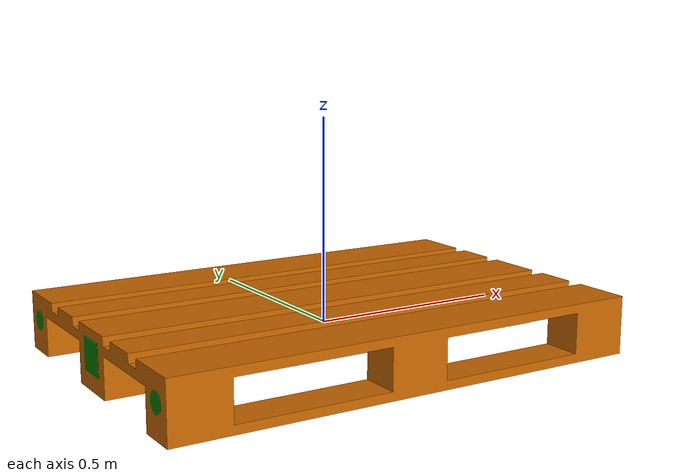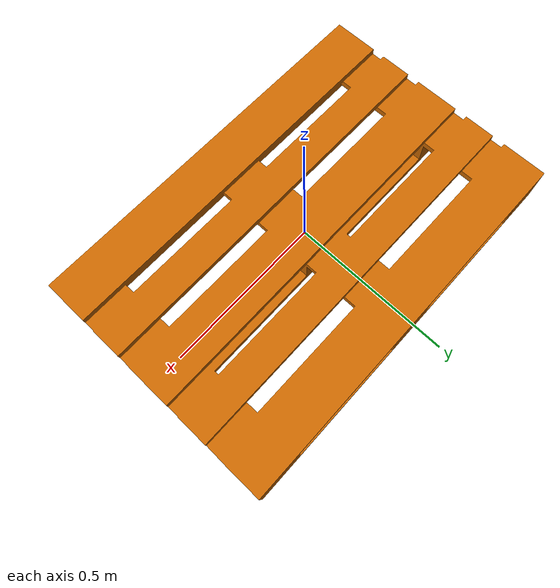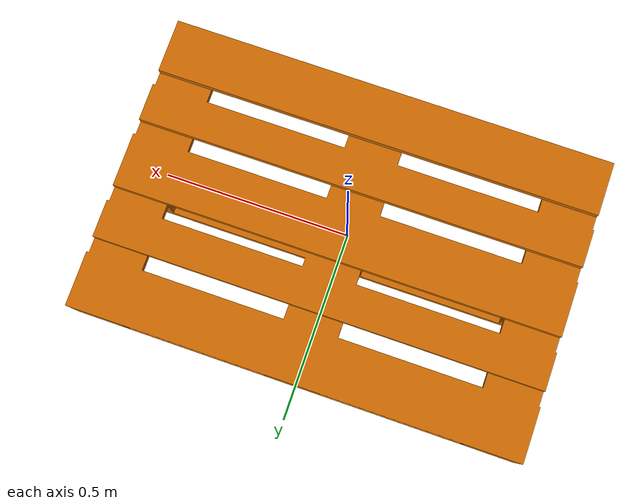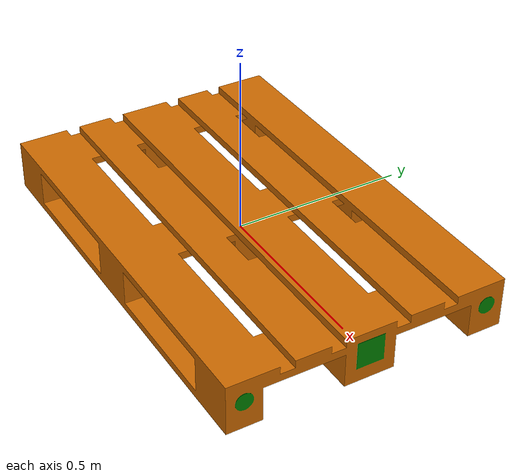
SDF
<?xml version="1.0" ?>
<sdf version="1.5">
  <model name="euro_pallet">
    <link name="link">
      <pose>0 0 0 0 0 0</pose>
      <inertial>
        <mass>20.0</mass>
        <inertia>
          <ixx>2.43</ixx>
          <ixy>0</ixy>
          <ixz>0</ixz>
          <iyy>1.10</iyy>
          <iyz>0</iyz>
          <izz>3.47</izz>
        </inertia>
      </inertial>
      <collision name="collision">
        <pose>0 0 0.05 0 0 0</pose>
        <geometry>
          <mesh>
            <uri>model://euro_pallet/meshes/pallet.dae</uri>
            <scale>0.1 0.1 0.1</scale>
          </mesh>
        </geometry>
      </collision>
        <material> <!-- Wheel material -->
          <ambient>0.1 0.1 0.1 1</ambient>
          <diffuse>0.1 0.1 0.2 1</diffuse>
          <specular>0 0 0 0</specular>
          <emissive>0 0 0 1</emissive>
        </material> <!-- End wheel material -->
      <visual name="visual">
        <pose>0 0 0.05 0 0 0</pose>
        <geometry>
          <mesh>
            <uri>model://euro_pallet/meshes/pallet.dae</uri>
            <scale>0.1 0.1 0.1</scale>
          </mesh>
        </geometry>
      </visual>
    </link>
  </model>
</sdf>
